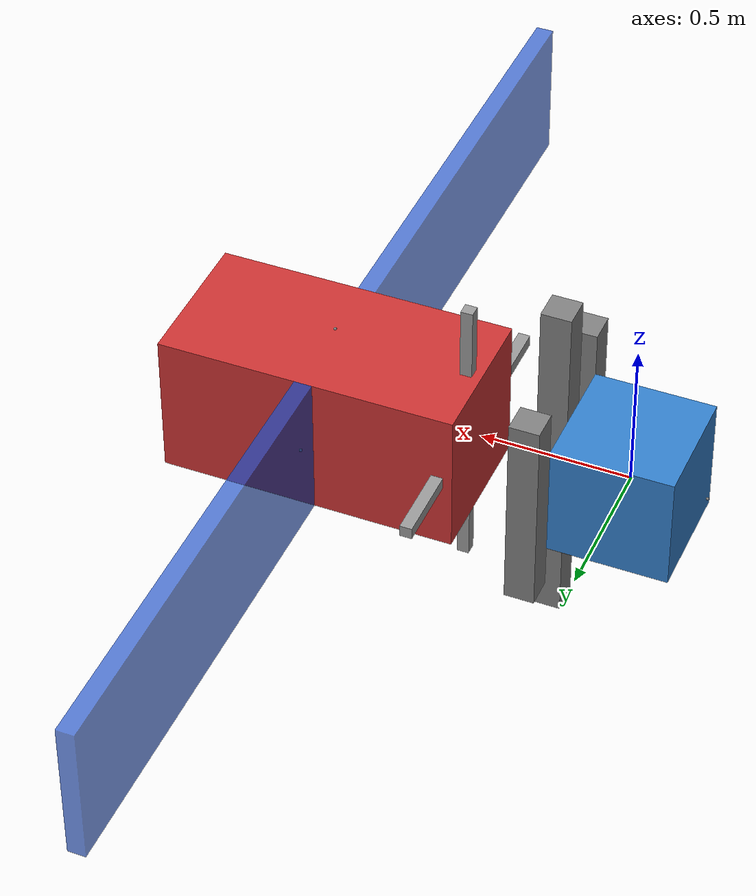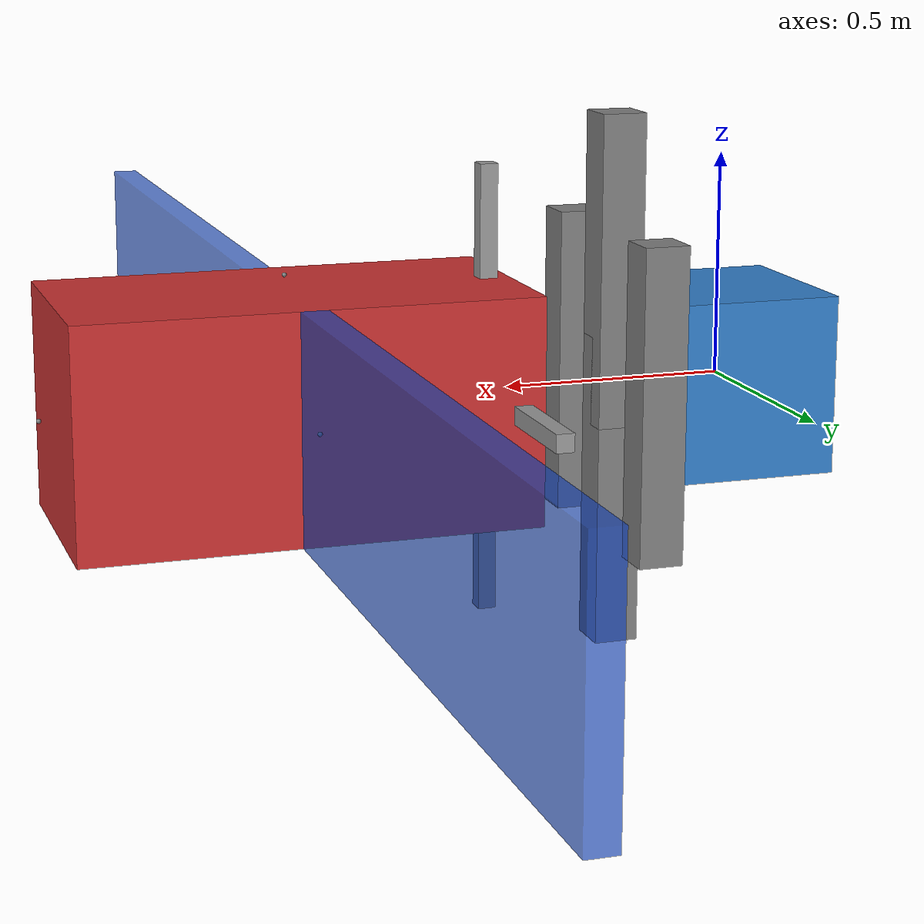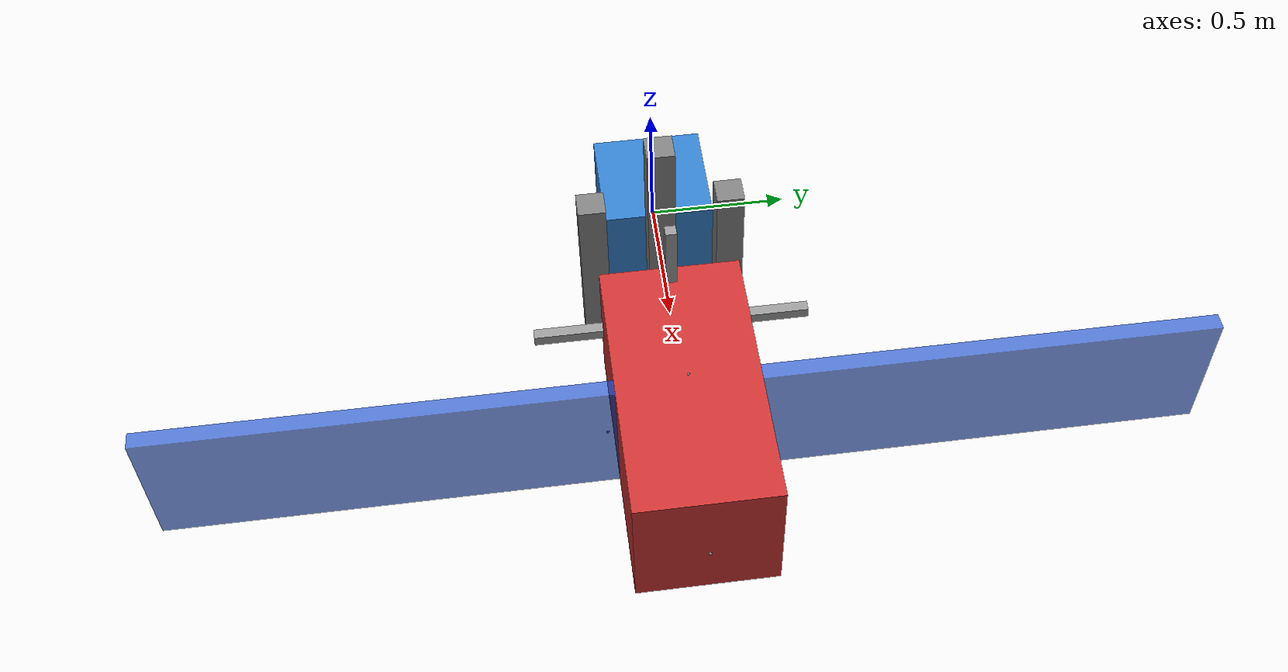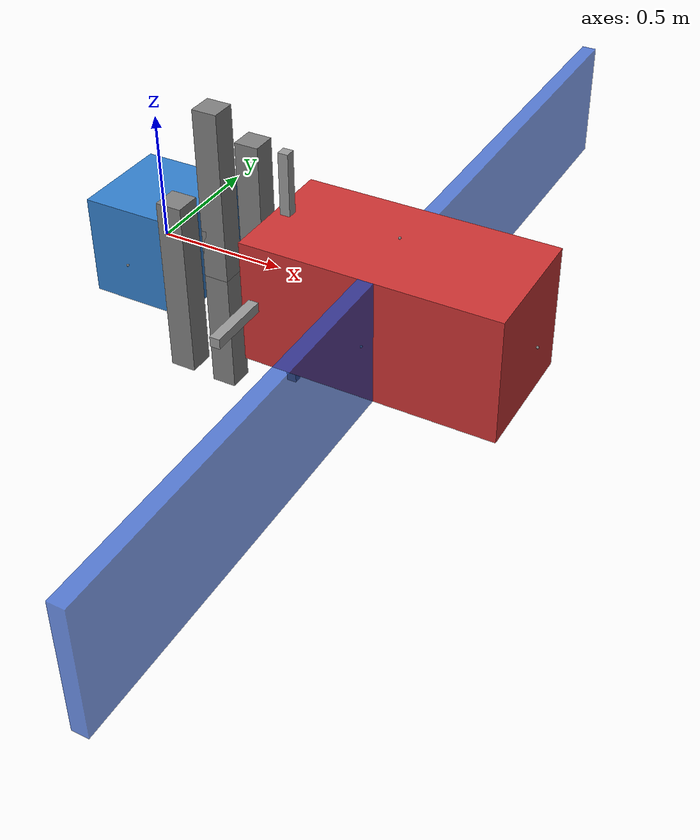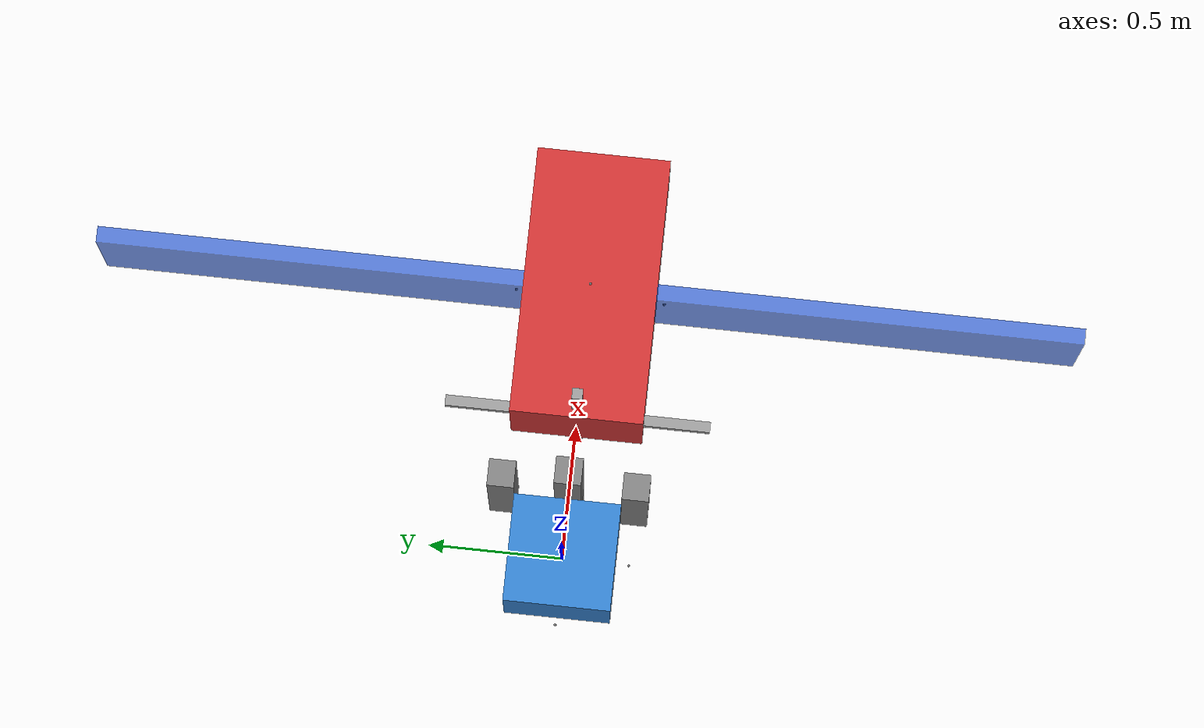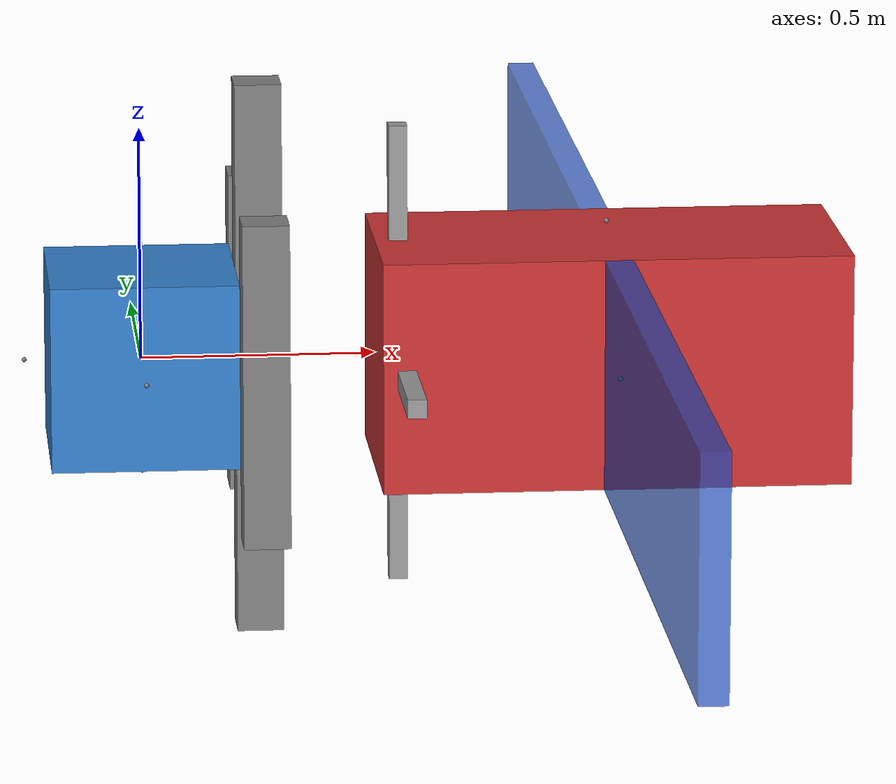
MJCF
<mujoco model="spacecraft_claw">
  <compiler angle="radian" meshdir="../meshes"/>

  <option timestep="0.002" gravity="0 0 0"/>

  <visual>
    <global offwidth="1920" offheight="1920"/>
  </visual>

  <default>
    <geom rgba="0.5 0.5 0.5 1"/>
  </default>

  <worldbody>
    <!-- ═══ Service Satellite + Claw Arms ═══ -->
    <body name="service_sat" pos="0 0 0">
      <freejoint/>
      <inertial pos="0 0 0" mass="100"
                diaginertia="16.667 16.667 16.667"/>
      <!-- Central body -->
      <geom name="service_body" type="box" size="0.2 0.2 0.2"
            rgba="0.2 0.5 0.8 1"/>

      <!-- 4 Claw arms extending +X, forming a cage -->
      <geom name="claw_top"    type="box" size="0.05 0.05 0.35"
            pos="0.25 0.25 0"    rgba="0.5 0.5 0.5 1"/>
      <geom name="claw_bottom" type="box" size="0.05 0.05 0.35"
            pos="0.25 -0.25 0"   rgba="0.5 0.5 0.5 1"/>
      <geom name="claw_left"   type="box" size="0.05 0.05 0.35"
            pos="0.25 0 0.25"    rgba="0.5 0.5 0.5 1"/>
      <geom name="claw_right"  type="box" size="0.05 0.05 0.35"
            pos="0.25 0 -0.25"   rgba="0.5 0.5 0.5 1"/>

      <!-- Claw crossbars at tips -->
      <geom name="claw_ring_t" type="box" size="0.02 0.25 0.02"
            pos="0.55 0.25 0"    rgba="0.6 0.6 0.6 1"/>
      <geom name="claw_ring_b" type="box" size="0.02 0.25 0.02"
            pos="0.55 -0.25 0"   rgba="0.6 0.6 0.6 1"/>
      <geom name="claw_ring_l" type="box" size="0.02 0.02 0.25"
            pos="0.55 0 0.25"    rgba="0.6 0.6 0.6 1"/>
      <geom name="claw_ring_r" type="box" size="0.02 0.02 0.25"
            pos="0.55 0 -0.25"   rgba="0.6 0.6 0.6 1"/>

      <!-- Thruster sites -->
      <site name="s_thr_px" pos="0.25 0 0"    euler="0 1.5708 0"/>
      <site name="s_thr_nx" pos="-0.25 0 0"   euler="0 -1.5708 0"/>
      <site name="s_thr_py" pos="0 0.25 0"    euler="-1.5708 0 0"/>
      <site name="s_thr_ny" pos="0 -0.25 0"   euler="1.5708 0 0"/>
      <site name="s_thr_pz" pos="0 0 0.25"    euler="0 0 0"/>
      <site name="s_thr_nz" pos="0 0 -0.25"   euler="3.1416 0 0"/>
      <site name="s_thr_aux1" pos="0.15 0.15 0.15"   euler="0.785 0.615 0"/>
      <site name="s_thr_aux2" pos="-0.15 -0.15 -0.15" euler="-2.356 0.615 0"/>
    </body>

    <!-- ═══ Target Spacecraft (inside claw cage) ═══ -->
    <body name="target_sat" pos="1.0 0 0">
      <freejoint/>
      <inertial pos="0 0 0" mass="500"
                diaginertia="416.667 541.667 541.667"/>
      <geom name="target_body" type="box" size="0.5 0.25 0.25"
            rgba="0.8 0.2 0.2 1"/>
      <!-- Solar panels -->
      <geom name="target_panel_py" type="box" size="0.03 0.8 0.25"
            pos="0 1.05 0" rgba="0.1 0.3 0.8 0.7"/>
      <geom name="target_panel_ny" type="box" size="0.03 0.8 0.25"
            pos="0 -1.05 0" rgba="0.1 0.3 0.8 0.7"/>

      <!-- Thruster sites -->
      <site name="t_thr_px" pos="0.53 0 0"    euler="0 1.5708 0"/>
      <site name="t_thr_nx" pos="-0.53 0 0"   euler="0 -1.5708 0"/>
      <site name="t_thr_py" pos="0 0.28 0"    euler="-1.5708 0 0"/>
      <site name="t_thr_ny" pos="0 -0.28 0"   euler="1.5708 0 0"/>
      <site name="t_thr_pz" pos="0 0 0.28"    euler="0 0 0"/>
      <site name="t_thr_nz" pos="0 0 -0.28"   euler="3.1416 0 0"/>
      <site name="t_thr_aux1" pos="0.2 0.2 0.2"    euler="0.785 0.615 0"/>
      <site name="t_thr_aux2" pos="-0.2 -0.2 -0.2" euler="-2.356 0.615 0"/>
    </body>
  </worldbody>

  <equality>
    <weld name="captured" body1="service_sat" body2="target_sat"
          relpose="1.0 0 0 1 0 0 0"/>
  </equality>

  <actuator>
    <general name="tau_x" site="s_thr_px" gaintype="fixed"/>
    <general name="tau_y" site="s_thr_py" gaintype="fixed"/>
    <general name="tau_z" site="s_thr_pz" gaintype="fixed"/>
  </actuator>
</mujoco>
